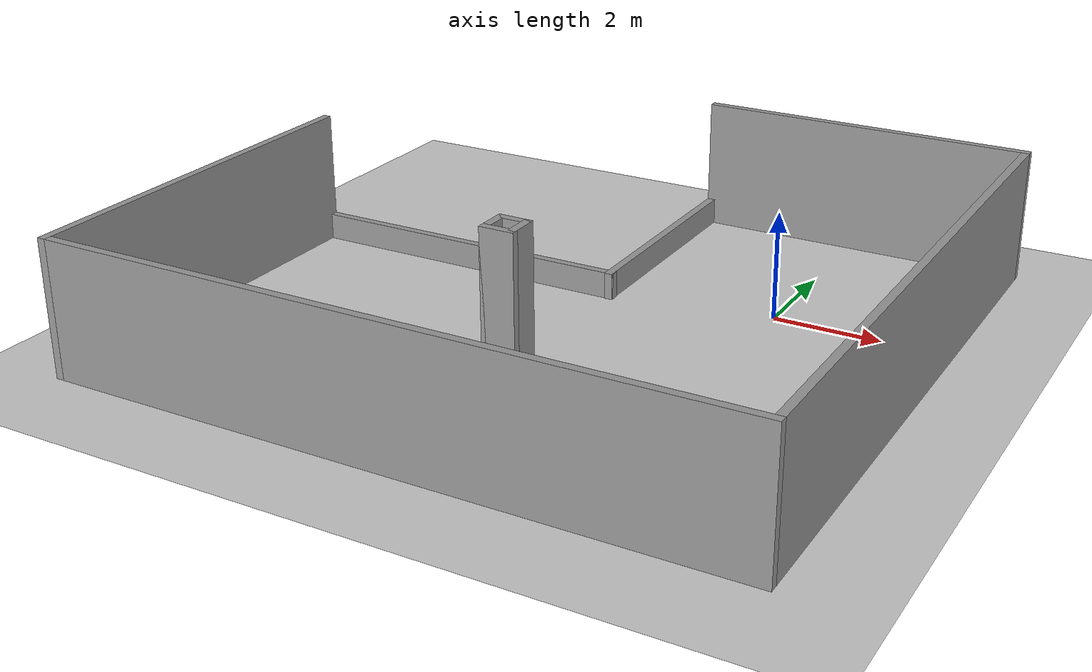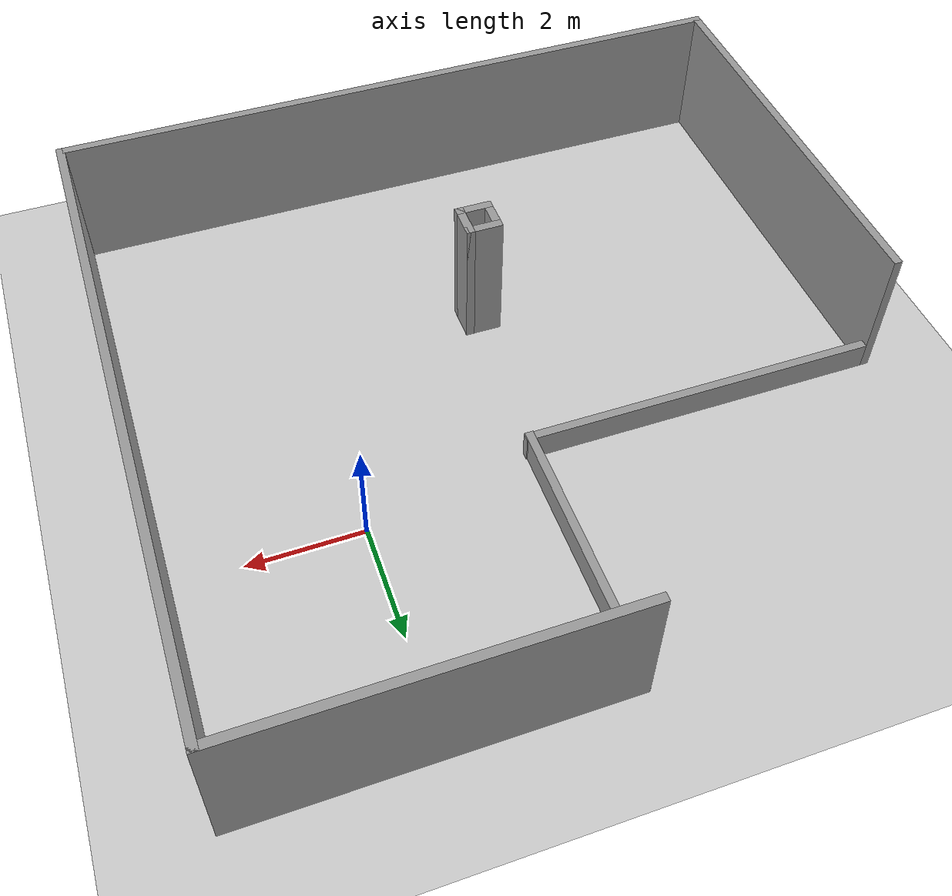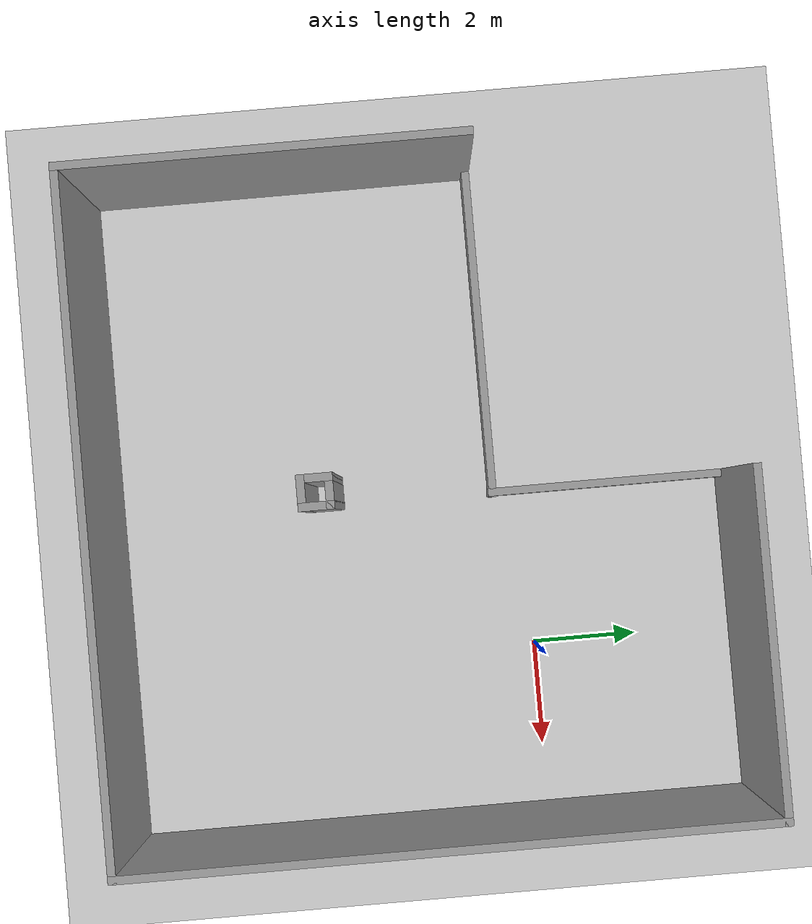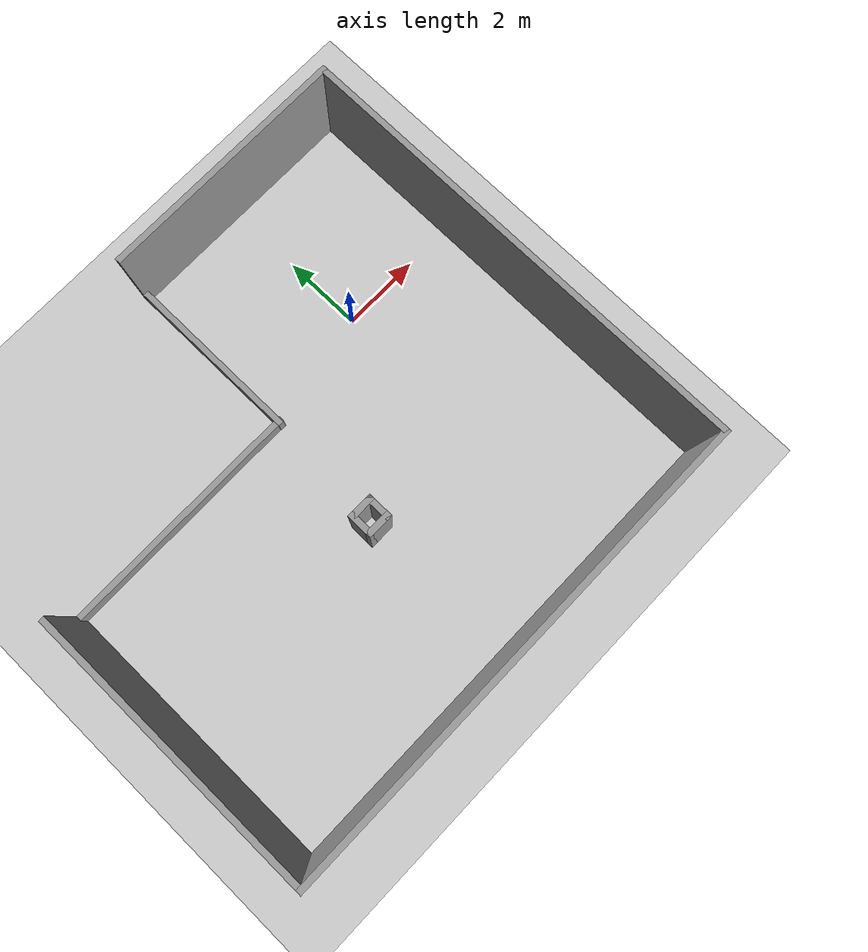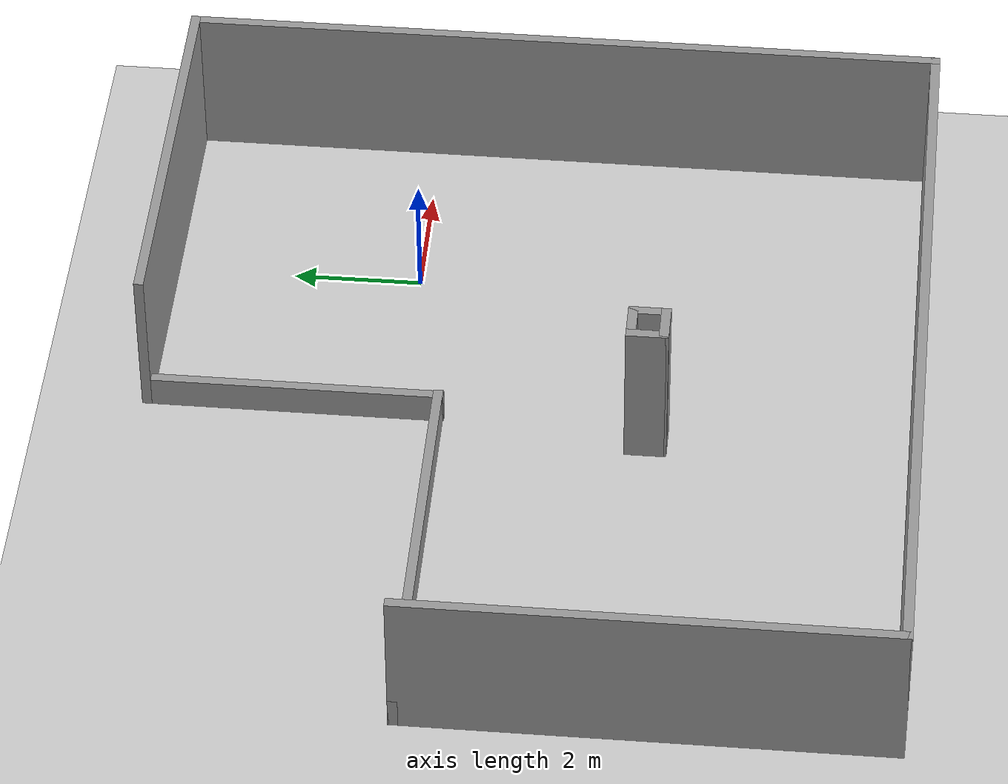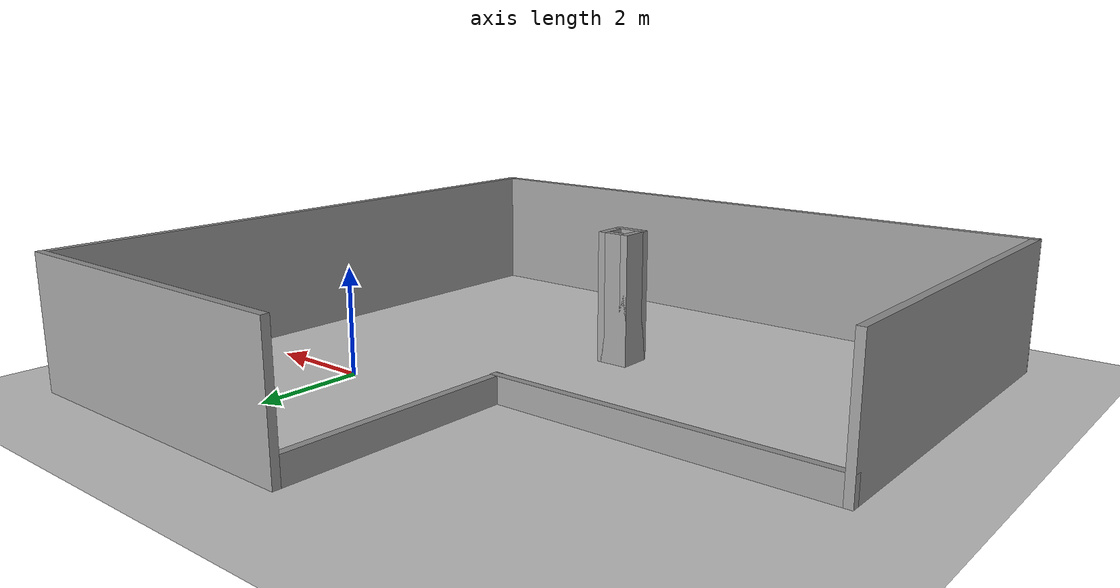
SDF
<sdf version="1.5">
 <world name="default">
  <plugin name="disable_physics" filename="libdisable_physics.so"/>
  <light name="sun" type="directional">
   <cast_shadows>0</cast_shadows>
   <pose>0 0 10 0 -0 0</pose>
   <diffuse>0.8 0.8 0.8 1</diffuse>
   <specular>0.2 0.2 0.2 1</specular>
   <attenuation>
    <range>1000</range>
    <constant>0.9</constant>
    <linear>0.01</linear>
    <quadratic>0.001</quadratic>
   </attenuation>
   <direction>-0.5 0.1 -0.9</direction>
  </light>
  <model name="ground_plane">
   <static>1</static>
   <link name="link">
    <collision name="collision">
     <geometry><plane><normal>0 0 1</normal><size>100 100</size></plane></geometry>
     <surface><friction><ode><mu>100</mu><mu2>50</mu2></ode></friction></surface>
    </collision>
    <visual name="visual">
     <cast_shadows>0</cast_shadows>
     <geometry><plane><normal>0 0 1</normal><size>100 100</size></plane></geometry>
     <material>
      <script><uri>file://media/materials/scripts/gazebo.material</uri><name>Gazebo/Grey</name></script>
     </material>
    </visual>
   </link>
  </model>
  <physics name="default_physics" default="0" type="ode">
   <max_step_size>0.001</max_step_size>
   <real_time_factor>1</real_time_factor>
   <real_time_update_rate>1000</real_time_update_rate>
   <gravity>0 0 -9.8</gravity>
   <magnetic_field>5.5645e-06 2.28758e-05 -4.23884e-05</magnetic_field>
  </physics>
  <scene><ambient>0.4 0.4 0.4 1</ambient><background>0.7 0.7 0.7 1</background><shadows>0</shadows></scene>
  <spherical_coordinates>
   <surface_model>EARTH_WGS84</surface_model>
   <latitude_deg>0</latitude_deg>
   <longitude_deg>0</longitude_deg>
   <elevation>0</elevation>
   <heading_deg>0</heading_deg>
  </spherical_coordinates>
  <model name="raven">
   <pose>-3.05804 -2 0 0 -0 0</pose>
   <link name="Wall_0">
    <collision name="Wall_0_Collision">
     <geometry><box><size>6.36822 0.15 2.5</size></box></geometry>
     <pose>0 0 1.25 0 -0 0</pose>
    </collision>
    <visual name="Wall_0_Visual">
     <pose>0 0 1.25 0 -0 0</pose>
     <geometry><box><size>6.36822 0.15 2.5</size></box></geometry>
     <material>
      <script><uri>file://media/materials/scripts/gazebo.material</uri><name>Gazebo/Grey</name></script>
      <ambient>1 1 1 1</ambient>
     </material>
    </visual>
    <pose>3.16645 5.92503 0 0 -0 0</pose>
   </link>
   <link name="Wall_11">
    <collision name="Wall_11_Collision">
     <geometry><box><size>0.65 0.15 2.5</size></box></geometry>
     <pose>0 0 1.25 0 -0 0</pose>
    </collision>
    <visual name="Wall_11_Visual">
     <pose>0 0 1.25 0 -0 0</pose>
     <geometry><box><size>0.65 0.15 2.5</size></box></geometry>
     <material>
      <script><uri>file://media/materials/scripts/gazebo.material</uri><name>Gazebo/Grey</name></script>
      <ambient>1 1 1 1</ambient>
     </material>
    </visual>
    <pose>0.075449 -1.82497 0 0 0 -1.5708</pose>
   </link>
   <link name="Wall_12">
    <collision name="Wall_12_Collision">
     <geometry><box><size>0.65 0.15 2.5</size></box></geometry>
     <pose>0 0 1.25 0 -0 0</pose>
    </collision>
    <visual name="Wall_12_Visual">
     <pose>0 0 1.25 0 -0 0</pose>
     <geometry><box><size>0.65 0.15 2.5</size></box></geometry>
     <material>
      <script><uri>file://media/materials/scripts/gazebo.material</uri><name>Gazebo/Grey</name></script>
      <ambient>1 1 1 1</ambient>
     </material>
    </visual>
    <pose>-0.174551 -2.07497 0 0 -0 3.14159</pose>
   </link>
   <link name="Wall_13">
    <collision name="Wall_13_Collision">
     <geometry><box><size>0.65 0.15 2.5</size></box></geometry>
     <pose>0 0 1.25 0 -0 0</pose>
    </collision>
    <visual name="Wall_13_Visual">
     <pose>0 0 1.25 0 -0 0</pose>
     <geometry><box><size>0.65 0.15 2.5</size></box></geometry>
     <material>
      <script><uri>file://media/materials/scripts/gazebo.material</uri><name>Gazebo/Grey</name></script>
      <ambient>1 1 1 1</ambient>
     </material>
    </visual>
    <pose>-0.424551 -1.82497 0 0 -0 1.5708</pose>
   </link>
   <link name="Wall_14">
    <collision name="Wall_14_Collision">
     <geometry><box><size>0.65 0.15 2.5</size></box></geometry>
     <pose>0 0 1.25 0 -0 0</pose>
    </collision>
    <visual name="Wall_14_Visual">
     <pose>0 0 1.25 0 -0 0</pose>
     <geometry><box><size>0.65 0.15 2.5</size></box></geometry>
     <material>
      <script><uri>file://media/materials/scripts/gazebo.material</uri><name>Gazebo/Grey</name></script>
      <ambient>1 1 1 1</ambient>
     </material>
    </visual>
    <pose>-0.174551 -1.57497 0 0 -0 0</pose>
   </link>
   <link name="Wall_2">
    <collision name="Wall_2_Collision">
     <geometry><box><size>12 0.15 2.5</size></box></geometry>
     <pose>0 0 1.25 0 -0 0</pose>
    </collision>
    <visual name="Wall_2_Visual">
     <pose>0 0 1.25 0 -0 0</pose>
     <geometry><box><size>12 0.15 2.5</size></box></geometry>
     <material>
      <script><uri>file://media/materials/scripts/gazebo.material</uri><name>Gazebo/Grey</name></script>
      <ambient>1 1 1 1</ambient>
     </material>
    </visual>
    <pose>6.27545 2.6e-05 0 0 0 -1.5708</pose>
   </link>
   <link name="Wall_4">
    <collision name="Wall_4_Collision">
     <geometry><box><size>12.7 0.15 2.5</size></box></geometry>
     <pose>0 0 1.25 0 -0 0</pose>
    </collision>
    <visual name="Wall_4_Visual">
     <pose>0 0 1.25 0 -0 0</pose>
     <geometry><box><size>12.7 0.15 2.5</size></box></geometry>
     <material>
      <script><uri>file://media/materials/scripts/gazebo.material</uri><name>Gazebo/Grey</name></script>
      <ambient>1 1 1 1</ambient>
     </material>
    </visual>
    <pose>0.000449 -5.92497 0 0 -0 3.14159</pose>
   </link>
   <link name="Wall_6">
    <collision name="Wall_6_Collision">
     <geometry><box><size>7.48508 0.15 2.5</size></box></geometry>
     <pose>0 0 1.25 0 -0 0</pose>
    </collision>
    <visual name="Wall_6_Visual">
     <pose>0 0 1.25 0 -0 0</pose>
     <geometry><box><size>7.48508 0.15 2.5</size></box></geometry>
     <material>
      <script><uri>file://media/materials/scripts/gazebo.material</uri><name>Gazebo/Grey</name></script>
      <ambient>1 1 1 1</ambient>
     </material>
    </visual>
    <pose>-6.27505 -2.25747 0 0 -0 1.57093</pose>
   </link>
   <link name="Wall_7">
    <collision name="Wall_7_Collision">
     <geometry><box><size>6.5 0.15 0.5</size></box></geometry>
     <pose>0 0 0.25 0 -0 0</pose>
    </collision>
    <visual name="Wall_7_Visual">
     <pose>0 0 0.25 0 -0 0</pose>
     <geometry><box><size>6.5 0.15 0.5</size></box></geometry>
     <material>
      <script><uri>file://media/materials/scripts/gazebo.material</uri><name>Gazebo/Grey</name></script>
      <ambient>1 1 1 1</ambient>
     </material>
    </visual>
    <pose>-3.10055 1.41003 0 0 -0 0</pose>
   </link>
   <link name="Wall_9">
    <collision name="Wall_9_Collision">
     <geometry><box><size>4.68 0.15 0.5</size></box></geometry>
     <pose>0 0 0.25 0 -0 0</pose>
    </collision>
    <visual name="Wall_9_Visual">
     <pose>0 0 0.25 0 -0 0</pose>
     <geometry><box><size>4.68 0.15 0.5</size></box></geometry>
     <material>
      <script><uri>file://media/materials/scripts/gazebo.material</uri><name>Gazebo/Grey</name></script>
      <ambient>1 1 1 1</ambient>
     </material>
    </visual>
    <pose>0.057449 3.66003 0 0 0 -1.5708</pose>
   </link>
   <static>1</static>
  </model>
 </world>
</sdf>
